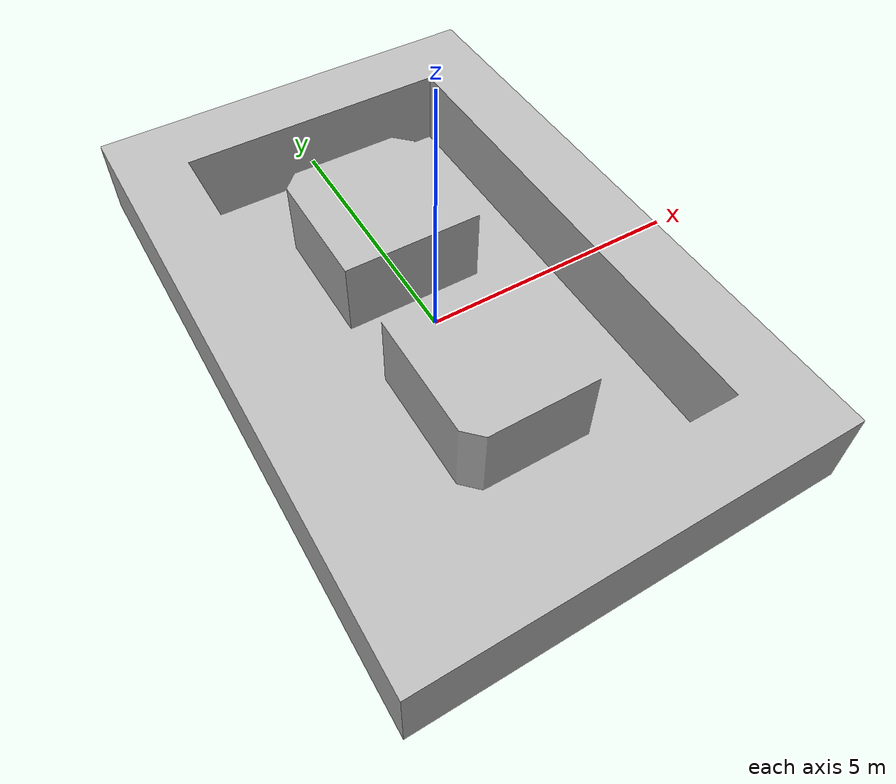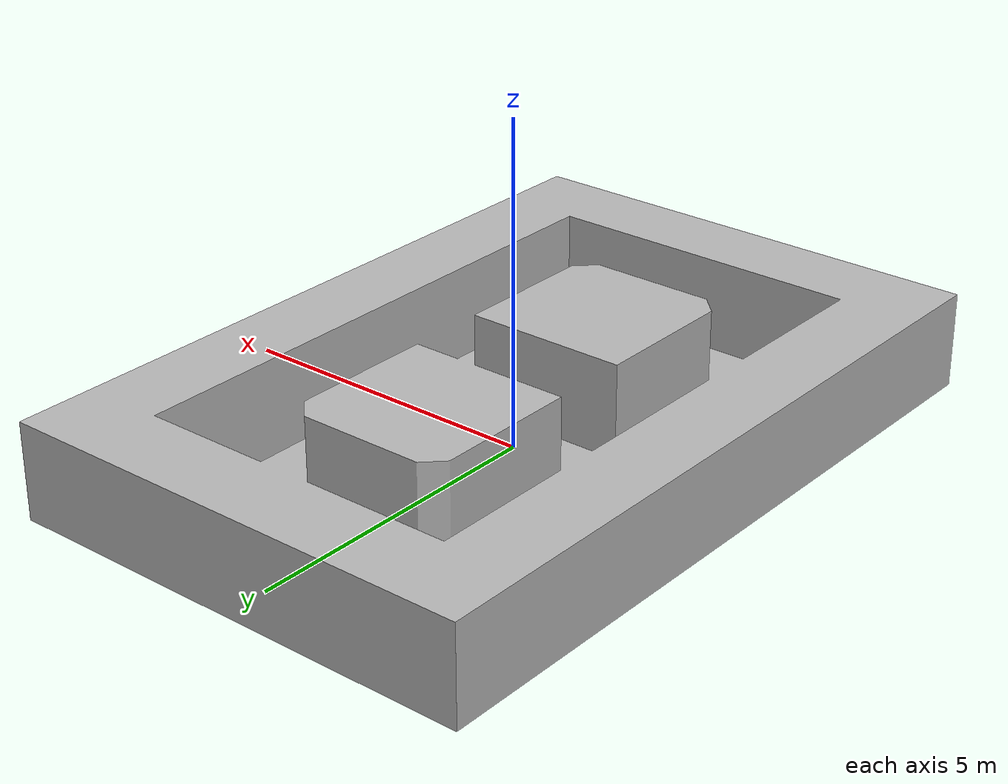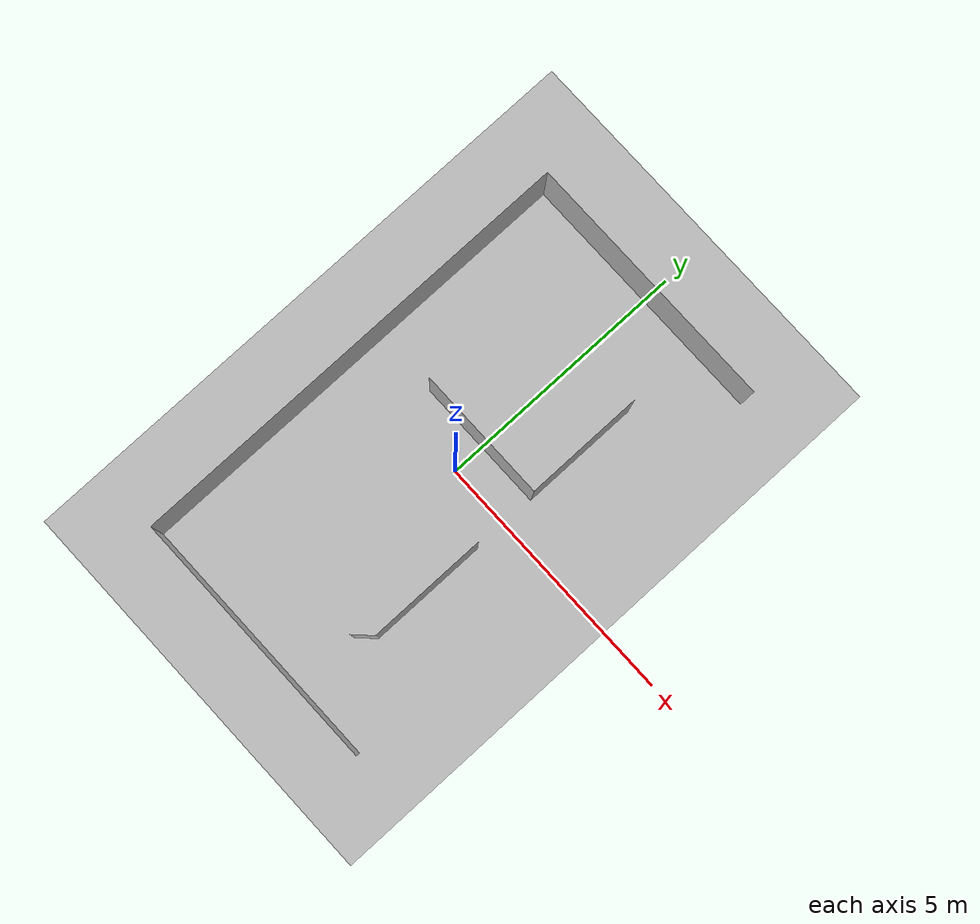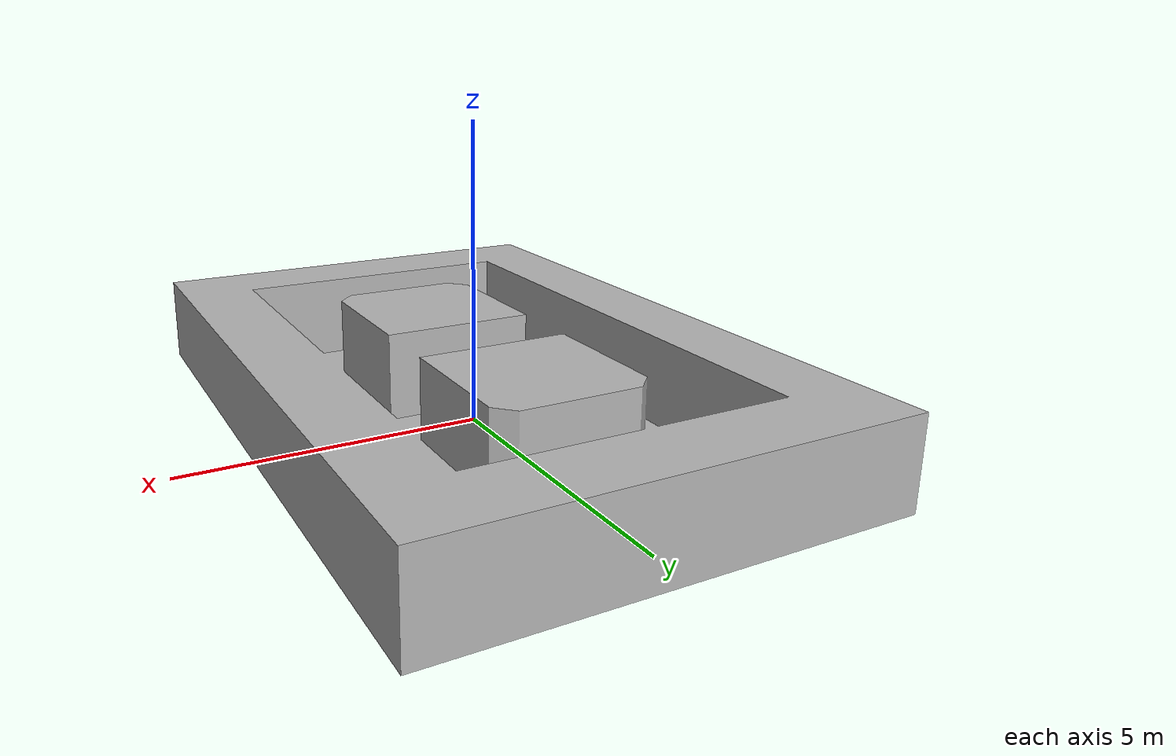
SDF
<?xml version="1.0"?>
<sdf version="1.4">
  <world name="default">
    <include>
      <uri>model://sun</uri>
    </include>

    <include>
      <uri>model://turtlebot3_maze2/mazev0</uri>
    </include>

    <physics type="ode">
      <real_time_update_rate>1000.0</real_time_update_rate>
      <max_step_size>0.001</max_step_size>
      <real_time_factor>1</real_time_factor>
      <ode>
        <solver>
          <type>quick</type>
          <iters>150</iters>
          <precon_iters>0</precon_iters>
          <sor>1.400000</sor>
          <use_dynamic_moi_rescaling>1</use_dynamic_moi_rescaling>
        </solver>
        <constraints>
          <cfm>0.00001</cfm>
          <erp>0.2</erp>
          <contact_max_correcting_vel>2000.000000</contact_max_correcting_vel>
          <contact_surface_layer>0.01000</contact_surface_layer>
        </constraints>
      </ode>
    </physics>

  </world>
</sdf>

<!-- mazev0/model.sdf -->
<sdf version='1.5'>
  <!-- Draw Model -->
  <model name="mazev1">
    <static>true</static>
    <link name="mazev1">
      <collision name="collision">
        <geometry>
          <mesh>
            <uri>model://turtlebot3_maze2/mazev0/mazev01.stl</uri>
          </mesh>
        </geometry>
      </collision>

      <visual name="visual">
        <geometry>
          <mesh>
            <uri>model://turtlebot3_maze2/mazev0/mazev01.dae</uri>
          </mesh>
        </geometry>
      </visual>
    </link>
  </model>
</sdf>
